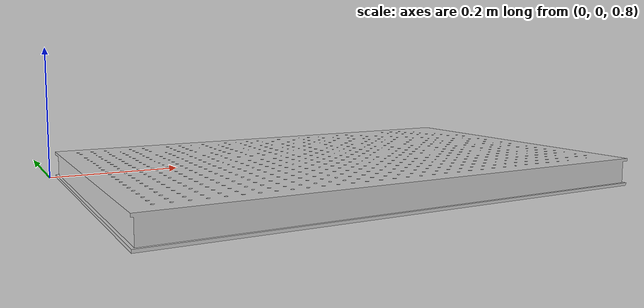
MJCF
<!-- Optical Breadboard Arena -->
<mujoco>
  <asset>
    <!-- Optical breadboard mesh and material -->
    <mesh name="optical_breadboard" file="../common_arena/OpticalBreadBoard.STL" scale="0.001 0.001 0.001"/>
    <material name="breadboard_material" rgba="0.8 0.8 0.8 1"/>
  </asset>

  <worldbody>
    <!-- Optical breadboard only - no extra ground plane -->
    <!-- Moved to negative X direction to align with robot workspace -->
    <body name="optical_breadboard" pos="0.5 0 0.8" quat="1 0 0 0">
      <geom name="breadboard_geom" mesh="optical_breadboard" material="breadboard_material" type="mesh" contype="1" conaffinity="1"/>
    </body>
  </worldbody>
</mujoco>
